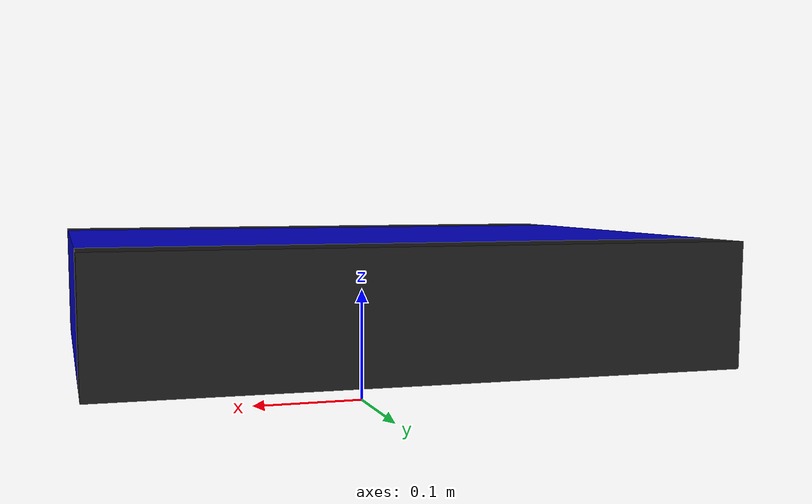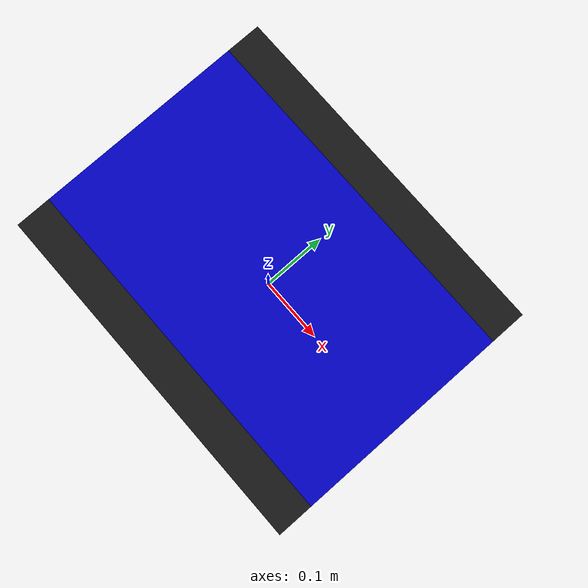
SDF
<?xml version="1.0" ?>
<sdf version="1.6">
  <model name="tracked_robot">
    <pose>0 0 0.1 0 0 0</pose>

    <!-- Main body link -->
    <link name="base_link">
      <inertial>
        <mass>5.0</mass>
        <inertia>
          <ixx>0.1</ixx>
          <ixy>0</ixy>
          <ixz>0</ixz>
          <iyy>0.1</iyy>
          <iyz>0</iyz>
          <izz>0.1</izz>
        </inertia>
      </inertial>

      <collision name="collision">
        <geometry>
          <box>
            <size>0.5 0.3 0.1</size>
          </box>
        </geometry>
      </collision>

      <visual name="visual">
        <geometry>
          <box>
            <size>0.5 0.3 0.1</size>
          </box>
        </geometry>
        <material>
          <ambient>0 0 0.8 1</ambient>
          <diffuse>0 0 0.8 1</diffuse>
          <specular>0.1 0.1 0.1 1</specular>
        </material>
      </visual>

      <!-- Depth camera -->
      <sensor name="depth_camera" type="depth">
        <pose>0.2 0 0.1 0 0 0</pose>
        <update_rate>30</update_rate>
        <camera>
          <horizontal_fov>1.047</horizontal_fov>
          <image>
            <width>640</width>
            <height>480</height>
            <format>R8G8B8</format>
          </image>
          <clip>
            <near>0.1</near>
            <far>10.0</far>
          </clip>
          <depth_camera>
            <output>depths</output>
          </depth_camera>
        </camera>
        <plugin filename="libgazebo_ros_camera.so" name="camera_controller">
          <ros>
            <namespace>/camera</namespace>
            <remapping>depth/image_raw:=depth/image_raw</remapping>
            <remapping>depth/camera_info:=depth/camera_info</remapping>
            <remapping>points:=depth/points</remapping>
          </ros>
          <camera_name>depth</camera_name>
          <frame_name>camera_link</frame_name>
          <hack_baseline>0.07</hack_baseline>
          <min_depth>0.1</min_depth>
          <max_depth>10.0</max_depth>
        </plugin>
      </sensor>

      <!-- IMU sensor -->
      <sensor name="imu_sensor" type="imu">
        <pose>0 0 0 0 0 0</pose>
        <always_on>1</always_on>
        <update_rate>100</update_rate>
        <visualize>true</visualize>
        <topic>imu</topic>
        <plugin filename="libgazebo_ros_imu_sensor.so" name="imu_plugin">
          <ros>
            <namespace>/</namespace>
            <remapping>~/out:=imu</remapping>
          </ros>
          <initial_orientation_as_reference>false</initial_orientation_as_reference>
        </plugin>
      </sensor>
    </link>

    <!-- Left track -->
    <link name="left_track">
      <pose>0 0.175 0 0 0 0</pose>
      <inertial>
        <mass>0.5</mass>
        <inertia>
          <ixx>0.01</ixx>
          <ixy>0</ixy>
          <ixz>0</ixz>
          <iyy>0.01</iyy>
          <iyz>0</iyz>
          <izz>0.01</izz>
        </inertia>
      </inertial>

      <collision name="collision">
        <geometry>
          <box>
            <size>0.5 0.05 0.1</size>
          </box>
        </geometry>
      </collision>

      <visual name="visual">
        <geometry>
          <box>
            <size>0.5 0.05 0.1</size>
          </box>
        </geometry>
        <material>
          <ambient>0.1 0.1 0.1 1</ambient>
          <diffuse>0.1 0.1 0.1 1</diffuse>
          <specular>0.1 0.1 0.1 1</specular>
        </material>
      </visual>
    </link>

    <!-- Right track -->
    <link name="right_track">
      <pose>0 -0.175 0 0 0 0</pose>
      <inertial>
        <mass>0.5</mass>
        <inertia>
          <ixx>0.01</ixx>
          <ixy>0</ixy>
          <ixz>0</ixz>
          <iyy>0.01</iyy>
          <iyz>0</iyz>
          <izz>0.01</izz>
        </inertia>
      </inertial>

      <collision name="collision">
        <geometry>
          <box>
            <size>0.5 0.05 0.1</size>
          </box>
        </geometry>
      </collision>

      <visual name="visual">
        <geometry>
          <box>
            <size>0.5 0.05 0.1</size>
          </box>
        </geometry>
        <material>
          <ambient>0.1 0.1 0.1 1</ambient>
          <diffuse>0.1 0.1 0.1 1</diffuse>
          <specular>0.1 0.1 0.1 1</specular>
        </material>
      </visual>
    </link>

    <!-- Left track joint -->
    <joint name="left_track_joint" type="revolute">
      <parent>base_link</parent>
      <child>left_track</child>
      <axis>
        <xyz>0 1 0</xyz>
        <limit>
          <lower>-1e+16</lower>
          <upper>1e+16</upper>
        </limit>
      </axis>
    </joint>

    <!-- Right track joint -->
    <joint name="right_track_joint" type="revolute">
      <parent>base_link</parent>
      <child>right_track</child>
      <axis>
        <xyz>0 1 0</xyz>
        <limit>
          <lower>-1e+16</lower>
          <upper>1e+16</upper>
        </limit>
      </axis>
    </joint>

    <!-- Differential drive plugin -->
    <plugin name="diff_drive" filename="libgazebo_ros_diff_drive.so">
      <ros>
        <namespace>/</namespace>
        <remapping>cmd_vel:=cmd_vel</remapping>
        <remapping>odom:=odom</remapping>
      </ros>

      <left_joint>left_track_joint</left_joint>
      <right_joint>right_track_joint</right_joint>
      <wheel_separation>0.35</wheel_separation>
      <wheel_diameter>0.1</wheel_diameter>

      <max_wheel_torque>20</max_wheel_torque>
      <max_wheel_acceleration>1.0</max_wheel_acceleration>

      <publish_odom>true</publish_odom>
      <publish_odom_tf>true</publish_odom_tf>
      <publish_wheel_tf>true</publish_wheel_tf>

      <odometry_frame>odom</odometry_frame>
      <robot_base_frame>base_link</robot_base_frame>
    </plugin>
  </model>
</sdf>
